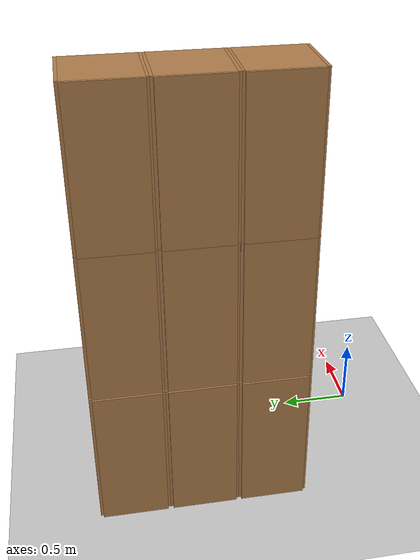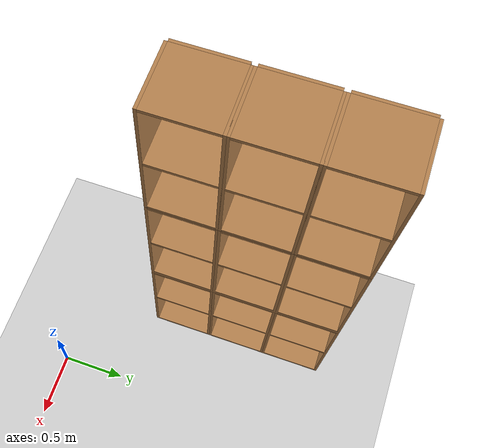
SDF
<sdf version="1.6">
 <world name="default">
  <model name="ground_plane">
   <static>1</static>
   <link name="link">
    <collision name="collision">
     <geometry><plane><normal>0 0 1</normal><size>100 100</size></plane></geometry>
     <surface>
      <contact><collide_bitmask>65535</collide_bitmask></contact>
      <friction><ode><mu>100</mu><mu2>50</mu2></ode></friction>
     </surface>
    </collision>
    <visual name="visual">
     <cast_shadows>0</cast_shadows>
     <geometry><plane><normal>0 0 1</normal><size>100 100</size></plane></geometry>
     <material>
      <script><uri>file://media/materials/scripts/gazebo.material</uri><name>Gazebo/Grey</name></script>
     </material>
    </visual>
   </link>
  </model>
  <model name="Locker18_clone_4_clone_2_clone_1_clone_clone_clone_2_clone_clone_2">
   <model name="Locker18">
    <model name="Locker3">
     <model name="cabinet">
      <static>1</static>
      <link name="cabinet_bottom_plate">
       <inertial>
        <pose>0 0 -1 0 -0 0</pose>
        <inertia><ixx>2.05</ixx><ixy>0</ixy><ixz>0</ixz><iyy>2.05</iyy><iyz>0</iyz><izz>2.05</izz></inertia>
        <mass>25</mass>
       </inertial>
       <collision name="cabinet_bottom_plate_geom">
        <pose>0 0 0.01 0 -0 0</pose>
        <geometry><box><size>0.45 0.45 0.02</size></box></geometry>
       </collision>
       <visual name="cabinet_bottom_plate_geom_visual">
        <pose>0 0 0.01 0 -0 0</pose>
        <geometry><box><size>0.45 0.45 0.02</size></box></geometry>
        <material>
         <script><uri>file://media/materials/scripts/gazebo.material</uri><name>Gazebo/Wood</name></script>
        </material>
       </visual>
       <collision name="cabinet_bottom_plate_geom_cabinet_back_plate">
        <pose>0.235 0 0.51 0 -0 0</pose>
        <geometry><box><size>0.02 0.45 1.02</size></box></geometry>
       </collision>
       <visual name="cabinet_bottom_plate_geom_cabinet_back_plate_visual">
        <pose>0.235 0 0.51 0 -0 0</pose>
        <geometry><box><size>0.02 0.45 1.02</size></box></geometry>
        <material>
         <script><uri>file://media/materials/scripts/gazebo.material</uri><name>Gazebo/Wood</name></script>
        </material>
       </visual>
       <collision name="cabinet_bottom_plate_geom_cabinet_left_plate">
        <pose>0 0.235 0.51 0 -0 0</pose>
        <geometry><box><size>0.45 0.02 1.02</size></box></geometry>
       </collision>
       <visual name="cabinet_bottom_plate_geom_cabinet_left_plate_visual">
        <pose>0 0.235 0.51 0 -0 0</pose>
        <geometry><box><size>0.45 0.02 1.02</size></box></geometry>
        <material>
         <script><uri>file://media/materials/scripts/gazebo.material</uri><name>Gazebo/Wood</name></script>
        </material>
       </visual>
       <collision name="cabinet_bottom_plate_geom_cabinet_middle_plate">
        <pose>0 0 0.51 0 -0 0</pose>
        <geometry><box><size>0.45 0.45 0.02</size></box></geometry>
       </collision>
       <visual name="cabinet_bottom_plate_geom_cabinet_middle_plate_visual">
        <pose>0 0 0.51 0 -0 0</pose>
        <geometry><box><size>0.45 0.45 0.02</size></box></geometry>
        <material>
         <script><uri>file://media/materials/scripts/gazebo.material</uri><name>Gazebo/Wood</name></script>
        </material>
       </visual>
       <collision name="cabinet_bottom_plate_geom_cabinet_right_plate">
        <pose>0 -0.235 0.51 0 -0 0</pose>
        <geometry><box><size>0.45 0.02 1.02</size></box></geometry>
       </collision>
       <visual name="cabinet_bottom_plate_geom_cabinet_right_plate_visual">
        <pose>0 -0.235 0.51 0 -0 0</pose>
        <geometry><box><size>0.45 0.02 1.02</size></box></geometry>
        <material>
         <script><uri>file://media/materials/scripts/gazebo.material</uri><name>Gazebo/Wood</name></script>
        </material>
       </visual>
       <collision name="cabinet_bottom_plate_geom_cabinet_top_plate">
        <pose>0 0 1.01 0 -0 0</pose>
        <geometry><box><size>0.45 0.45 0.02</size></box></geometry>
       </collision>
       <visual name="cabinet_bottom_plate_geom_cabinet_top_plate_visual">
        <pose>0 0 1.01 0 -0 0</pose>
        <geometry><box><size>0.45 0.45 0.02</size></box></geometry>
        <material>
         <script><uri>file://media/materials/scripts/gazebo.material</uri><name>Gazebo/Wood</name></script>
        </material>
       </visual>
      </link>
      <pose>-0.676968 1.45758 0 0 -0 0</pose>
     </model>
     <model name="cabinet_clone">
      <static>1</static>
      <link name="cabinet_bottom_plate">
       <inertial>
        <pose>0 0 -1 0 -0 0</pose>
        <inertia><ixx>2.05</ixx><ixy>0</ixy><ixz>0</ixz><iyy>2.05</iyy><iyz>0</iyz><izz>2.05</izz></inertia>
        <mass>25</mass>
       </inertial>
       <collision name="cabinet_bottom_plate_geom">
        <pose>0 0 0.01 0 -0 0</pose>
        <geometry><box><size>0.45 0.45 0.02</size></box></geometry>
       </collision>
       <visual name="cabinet_bottom_plate_geom_visual">
        <pose>0 0 0.01 0 -0 0</pose>
        <geometry><box><size>0.45 0.45 0.02</size></box></geometry>
        <material>
         <script><uri>file://media/materials/scripts/gazebo.material</uri><name>Gazebo/Wood</name></script>
        </material>
       </visual>
       <collision name="cabinet_bottom_plate_geom_cabinet_back_plate">
        <pose>0.235 0 0.51 0 -0 0</pose>
        <geometry><box><size>0.02 0.45 1.02</size></box></geometry>
       </collision>
       <visual name="cabinet_bottom_plate_geom_cabinet_back_plate_visual">
        <pose>0.235 0 0.51 0 -0 0</pose>
        <geometry><box><size>0.02 0.45 1.02</size></box></geometry>
        <material>
         <script><uri>file://media/materials/scripts/gazebo.material</uri><name>Gazebo/Wood</name></script>
        </material>
       </visual>
       <collision name="cabinet_bottom_plate_geom_cabinet_left_plate">
        <pose>0 0.235 0.51 0 -0 0</pose>
        <geometry><box><size>0.45 0.02 1.02</size></box></geometry>
       </collision>
       <visual name="cabinet_bottom_plate_geom_cabinet_left_plate_visual">
        <pose>0 0.235 0.51 0 -0 0</pose>
        <geometry><box><size>0.45 0.02 1.02</size></box></geometry>
        <material>
         <script><uri>file://media/materials/scripts/gazebo.material</uri><name>Gazebo/Wood</name></script>
        </material>
       </visual>
       <collision name="cabinet_bottom_plate_geom_cabinet_middle_plate">
        <pose>0 0 0.51 0 -0 0</pose>
        <geometry><box><size>0.45 0.45 0.02</size></box></geometry>
       </collision>
       <visual name="cabinet_bottom_plate_geom_cabinet_middle_plate_visual">
        <pose>0 0 0.51 0 -0 0</pose>
        <geometry><box><size>0.45 0.45 0.02</size></box></geometry>
        <material>
         <script><uri>file://media/materials/scripts/gazebo.material</uri><name>Gazebo/Wood</name></script>
        </material>
       </visual>
       <collision name="cabinet_bottom_plate_geom_cabinet_right_plate">
        <pose>0 -0.235 0.51 0 -0 0</pose>
        <geometry><box><size>0.45 0.02 1.02</size></box></geometry>
       </collision>
       <visual name="cabinet_bottom_plate_geom_cabinet_right_plate_visual">
        <pose>0 -0.235 0.51 0 -0 0</pose>
        <geometry><box><size>0.45 0.02 1.02</size></box></geometry>
        <material>
         <script><uri>file://media/materials/scripts/gazebo.material</uri><name>Gazebo/Wood</name></script>
        </material>
       </visual>
       <collision name="cabinet_bottom_plate_geom_cabinet_top_plate">
        <pose>0 0 1.01 0 -0 0</pose>
        <geometry><box><size>0.45 0.45 0.02</size></box></geometry>
       </collision>
       <visual name="cabinet_bottom_plate_geom_cabinet_top_plate_visual">
        <pose>0 0 1.01 0 -0 0</pose>
        <geometry><box><size>0.45 0.45 0.02</size></box></geometry>
        <material>
         <script><uri>file://media/materials/scripts/gazebo.material</uri><name>Gazebo/Wood</name></script>
        </material>
       </visual>
      </link>
      <pose>-0.676968 0.970971 0 0 -0 0</pose>
     </model>
     <model name="cabinet_clone_0">
      <static>1</static>
      <link name="cabinet_bottom_plate">
       <inertial>
        <pose>0 0 -1 0 -0 0</pose>
        <inertia><ixx>2.05</ixx><ixy>0</ixy><ixz>0</ixz><iyy>2.05</iyy><iyz>0</iyz><izz>2.05</izz></inertia>
        <mass>25</mass>
       </inertial>
       <collision name="cabinet_bottom_plate_geom">
        <pose>0 0 0.01 0 -0 0</pose>
        <geometry><box><size>0.45 0.45 0.02</size></box></geometry>
       </collision>
       <visual name="cabinet_bottom_plate_geom_visual">
        <pose>0 0 0.01 0 -0 0</pose>
        <geometry><box><size>0.45 0.45 0.02</size></box></geometry>
        <material>
         <script><uri>file://media/materials/scripts/gazebo.material</uri><name>Gazebo/Wood</name></script>
        </material>
       </visual>
       <collision name="cabinet_bottom_plate_geom_cabinet_back_plate">
        <pose>0.235 0 0.51 0 -0 0</pose>
        <geometry><box><size>0.02 0.45 1.02</size></box></geometry>
       </collision>
       <visual name="cabinet_bottom_plate_geom_cabinet_back_plate_visual">
        <pose>0.235 0 0.51 0 -0 0</pose>
        <geometry><box><size>0.02 0.45 1.02</size></box></geometry>
        <material>
         <script><uri>file://media/materials/scripts/gazebo.material</uri><name>Gazebo/Wood</name></script>
        </material>
       </visual>
       <collision name="cabinet_bottom_plate_geom_cabinet_left_plate">
        <pose>0 0.235 0.51 0 -0 0</pose>
        <geometry><box><size>0.45 0.02 1.02</size></box></geometry>
       </collision>
       <visual name="cabinet_bottom_plate_geom_cabinet_left_plate_visual">
        <pose>0 0.235 0.51 0 -0 0</pose>
        <geometry><box><size>0.45 0.02 1.02</size></box></geometry>
        <material>
         <script><uri>file://media/materials/scripts/gazebo.material</uri><name>Gazebo/Wood</name></script>
        </material>
       </visual>
       <collision name="cabinet_bottom_plate_geom_cabinet_middle_plate">
        <pose>0 0 0.51 0 -0 0</pose>
        <geometry><box><size>0.45 0.45 0.02</size></box></geometry>
       </collision>
       <visual name="cabinet_bottom_plate_geom_cabinet_middle_plate_visual">
        <pose>0 0 0.51 0 -0 0</pose>
        <geometry><box><size>0.45 0.45 0.02</size></box></geometry>
        <material>
         <script><uri>file://media/materials/scripts/gazebo.material</uri><name>Gazebo/Wood</name></script>
        </material>
       </visual>
       <collision name="cabinet_bottom_plate_geom_cabinet_right_plate">
        <pose>0 -0.235 0.51 0 -0 0</pose>
        <geometry><box><size>0.45 0.02 1.02</size></box></geometry>
       </collision>
       <visual name="cabinet_bottom_plate_geom_cabinet_right_plate_visual">
        <pose>0 -0.235 0.51 0 -0 0</pose>
        <geometry><box><size>0.45 0.02 1.02</size></box></geometry>
        <material>
         <script><uri>file://media/materials/scripts/gazebo.material</uri><name>Gazebo/Wood</name></script>
        </material>
       </visual>
       <collision name="cabinet_bottom_plate_geom_cabinet_top_plate">
        <pose>0 0 1.01 0 -0 0</pose>
        <geometry><box><size>0.45 0.45 0.02</size></box></geometry>
       </collision>
       <visual name="cabinet_bottom_plate_geom_cabinet_top_plate_visual">
        <pose>0 0 1.01 0 -0 0</pose>
        <geometry><box><size>0.45 0.45 0.02</size></box></geometry>
        <material>
         <script><uri>file://media/materials/scripts/gazebo.material</uri><name>Gazebo/Wood</name></script>
        </material>
       </visual>
      </link>
      <pose>-0.676968 0.48391 0 0 -0 0</pose>
     </model>
     <static>0</static>
     <pose>0 3e-06 -1.02763 0 -0 0</pose>
    </model>
    <model name="Locker3_clone">
     <model name="cabinet">
      <static>1</static>
      <link name="cabinet_bottom_plate">
       <inertial>
        <pose>0 0 -1 0 -0 0</pose>
        <inertia><ixx>2.05</ixx><ixy>0</ixy><ixz>0</ixz><iyy>2.05</iyy><iyz>0</iyz><izz>2.05</izz></inertia>
        <mass>25</mass>
       </inertial>
       <collision name="cabinet_bottom_plate_geom">
        <pose>0 0 0.01 0 -0 0</pose>
        <geometry><box><size>0.45 0.45 0.02</size></box></geometry>
       </collision>
       <visual name="cabinet_bottom_plate_geom_visual">
        <pose>0 0 0.01 0 -0 0</pose>
        <geometry><box><size>0.45 0.45 0.02</size></box></geometry>
        <material>
         <script><uri>file://media/materials/scripts/gazebo.material</uri><name>Gazebo/Wood</name></script>
        </material>
       </visual>
       <collision name="cabinet_bottom_plate_geom_cabinet_back_plate">
        <pose>0.235 0 0.51 0 -0 0</pose>
        <geometry><box><size>0.02 0.45 1.02</size></box></geometry>
       </collision>
       <visual name="cabinet_bottom_plate_geom_cabinet_back_plate_visual">
        <pose>0.235 0 0.51 0 -0 0</pose>
        <geometry><box><size>0.02 0.45 1.02</size></box></geometry>
        <material>
         <script><uri>file://media/materials/scripts/gazebo.material</uri><name>Gazebo/Wood</name></script>
        </material>
       </visual>
       <collision name="cabinet_bottom_plate_geom_cabinet_left_plate">
        <pose>0 0.235 0.51 0 -0 0</pose>
        <geometry><box><size>0.45 0.02 1.02</size></box></geometry>
       </collision>
       <visual name="cabinet_bottom_plate_geom_cabinet_left_plate_visual">
        <pose>0 0.235 0.51 0 -0 0</pose>
        <geometry><box><size>0.45 0.02 1.02</size></box></geometry>
        <material>
         <script><uri>file://media/materials/scripts/gazebo.material</uri><name>Gazebo/Wood</name></script>
        </material>
       </visual>
       <collision name="cabinet_bottom_plate_geom_cabinet_middle_plate">
        <pose>0 0 0.51 0 -0 0</pose>
        <geometry><box><size>0.45 0.45 0.02</size></box></geometry>
       </collision>
       <visual name="cabinet_bottom_plate_geom_cabinet_middle_plate_visual">
        <pose>0 0 0.51 0 -0 0</pose>
        <geometry><box><size>0.45 0.45 0.02</size></box></geometry>
        <material>
         <script><uri>file://media/materials/scripts/gazebo.material</uri><name>Gazebo/Wood</name></script>
        </material>
       </visual>
       <collision name="cabinet_bottom_plate_geom_cabinet_right_plate">
        <pose>0 -0.235 0.51 0 -0 0</pose>
        <geometry><box><size>0.45 0.02 1.02</size></box></geometry>
       </collision>
       <visual name="cabinet_bottom_plate_geom_cabinet_right_plate_visual">
        <pose>0 -0.235 0.51 0 -0 0</pose>
        <geometry><box><size>0.45 0.02 1.02</size></box></geometry>
        <material>
         <script><uri>file://media/materials/scripts/gazebo.material</uri><name>Gazebo/Wood</name></script>
        </material>
       </visual>
       <collision name="cabinet_bottom_plate_geom_cabinet_top_plate">
        <pose>0 0 1.01 0 -0 0</pose>
        <geometry><box><size>0.45 0.45 0.02</size></box></geometry>
       </collision>
       <visual name="cabinet_bottom_plate_geom_cabinet_top_plate_visual">
        <pose>0 0 1.01 0 -0 0</pose>
        <geometry><box><size>0.45 0.45 0.02</size></box></geometry>
        <material>
         <script><uri>file://media/materials/scripts/gazebo.material</uri><name>Gazebo/Wood</name></script>
        </material>
       </visual>
      </link>
      <pose>-0.676968 1.45758 0 0 -0 0</pose>
     </model>
     <model name="cabinet_clone">
      <static>1</static>
      <link name="cabinet_bottom_plate">
       <inertial>
        <pose>0 0 -1 0 -0 0</pose>
        <inertia><ixx>2.05</ixx><ixy>0</ixy><ixz>0</ixz><iyy>2.05</iyy><iyz>0</iyz><izz>2.05</izz></inertia>
        <mass>25</mass>
       </inertial>
       <collision name="cabinet_bottom_plate_geom">
        <pose>0 0 0.01 0 -0 0</pose>
        <geometry><box><size>0.45 0.45 0.02</size></box></geometry>
       </collision>
       <visual name="cabinet_bottom_plate_geom_visual">
        <pose>0 0 0.01 0 -0 0</pose>
        <geometry><box><size>0.45 0.45 0.02</size></box></geometry>
        <material>
         <script><uri>file://media/materials/scripts/gazebo.material</uri><name>Gazebo/Wood</name></script>
        </material>
       </visual>
       <collision name="cabinet_bottom_plate_geom_cabinet_back_plate">
        <pose>0.235 0 0.51 0 -0 0</pose>
        <geometry><box><size>0.02 0.45 1.02</size></box></geometry>
       </collision>
       <visual name="cabinet_bottom_plate_geom_cabinet_back_plate_visual">
        <pose>0.235 0 0.51 0 -0 0</pose>
        <geometry><box><size>0.02 0.45 1.02</size></box></geometry>
        <material>
         <script><uri>file://media/materials/scripts/gazebo.material</uri><name>Gazebo/Wood</name></script>
        </material>
       </visual>
       <collision name="cabinet_bottom_plate_geom_cabinet_left_plate">
        <pose>0 0.235 0.51 0 -0 0</pose>
        <geometry><box><size>0.45 0.02 1.02</size></box></geometry>
       </collision>
       <visual name="cabinet_bottom_plate_geom_cabinet_left_plate_visual">
        <pose>0 0.235 0.51 0 -0 0</pose>
        <geometry><box><size>0.45 0.02 1.02</size></box></geometry>
        <material>
         <script><uri>file://media/materials/scripts/gazebo.material</uri><name>Gazebo/Wood</name></script>
        </material>
       </visual>
       <collision name="cabinet_bottom_plate_geom_cabinet_middle_plate">
        <pose>0 0 0.51 0 -0 0</pose>
        <geometry><box><size>0.45 0.45 0.02</size></box></geometry>
       </collision>
       <visual name="cabinet_bottom_plate_geom_cabinet_middle_plate_visual">
        <pose>0 0 0.51 0 -0 0</pose>
        <geometry><box><size>0.45 0.45 0.02</size></box></geometry>
        <material>
         <script><uri>file://media/materials/scripts/gazebo.material</uri><name>Gazebo/Wood</name></script>
        </material>
       </visual>
       <collision name="cabinet_bottom_plate_geom_cabinet_right_plate">
        <pose>0 -0.235 0.51 0 -0 0</pose>
        <geometry><box><size>0.45 0.02 1.02</size></box></geometry>
       </collision>
       <visual name="cabinet_bottom_plate_geom_cabinet_right_plate_visual">
        <pose>0 -0.235 0.51 0 -0 0</pose>
        <geometry><box><size>0.45 0.02 1.02</size></box></geometry>
        <material>
         <script><uri>file://media/materials/scripts/gazebo.material</uri><name>Gazebo/Wood</name></script>
        </material>
       </visual>
       <collision name="cabinet_bottom_plate_geom_cabinet_top_plate">
        <pose>0 0 1.01 0 -0 0</pose>
        <geometry><box><size>0.45 0.45 0.02</size></box></geometry>
       </collision>
       <visual name="cabinet_bottom_plate_geom_cabinet_top_plate_visual">
        <pose>0 0 1.01 0 -0 0</pose>
        <geometry><box><size>0.45 0.45 0.02</size></box></geometry>
        <material>
         <script><uri>file://media/materials/scripts/gazebo.material</uri><name>Gazebo/Wood</name></script>
        </material>
       </visual>
      </link>
      <pose>-0.676968 0.970971 0 0 -0 0</pose>
     </model>
     <model name="cabinet_clone_0">
      <static>1</static>
      <link name="cabinet_bottom_plate">
       <inertial>
        <pose>0 0 -1 0 -0 0</pose>
        <inertia><ixx>2.05</ixx><ixy>0</ixy><ixz>0</ixz><iyy>2.05</iyy><iyz>0</iyz><izz>2.05</izz></inertia>
        <mass>25</mass>
       </inertial>
       <collision name="cabinet_bottom_plate_geom">
        <pose>0 0 0.01 0 -0 0</pose>
        <geometry><box><size>0.45 0.45 0.02</size></box></geometry>
       </collision>
       <visual name="cabinet_bottom_plate_geom_visual">
        <pose>0 0 0.01 0 -0 0</pose>
        <geometry><box><size>0.45 0.45 0.02</size></box></geometry>
        <material>
         <script><uri>file://media/materials/scripts/gazebo.material</uri><name>Gazebo/Wood</name></script>
        </material>
       </visual>
       <collision name="cabinet_bottom_plate_geom_cabinet_back_plate">
        <pose>0.235 0 0.51 0 -0 0</pose>
        <geometry><box><size>0.02 0.45 1.02</size></box></geometry>
       </collision>
       <visual name="cabinet_bottom_plate_geom_cabinet_back_plate_visual">
        <pose>0.235 0 0.51 0 -0 0</pose>
        <geometry><box><size>0.02 0.45 1.02</size></box></geometry>
        <material>
         <script><uri>file://media/materials/scripts/gazebo.material</uri><name>Gazebo/Wood</name></script>
        </material>
       </visual>
       <collision name="cabinet_bottom_plate_geom_cabinet_left_plate">
        <pose>0 0.235 0.51 0 -0 0</pose>
        <geometry><box><size>0.45 0.02 1.02</size></box></geometry>
       </collision>
       <visual name="cabinet_bottom_plate_geom_cabinet_left_plate_visual">
        <pose>0 0.235 0.51 0 -0 0</pose>
        <geometry><box><size>0.45 0.02 1.02</size></box></geometry>
        <material>
         <script><uri>file://media/materials/scripts/gazebo.material</uri><name>Gazebo/Wood</name></script>
        </material>
       </visual>
       <collision name="cabinet_bottom_plate_geom_cabinet_middle_plate">
        <pose>0 0 0.51 0 -0 0</pose>
        <geometry><box><size>0.45 0.45 0.02</size></box></geometry>
       </collision>
       <visual name="cabinet_bottom_plate_geom_cabinet_middle_plate_visual">
        <pose>0 0 0.51 0 -0 0</pose>
        <geometry><box><size>0.45 0.45 0.02</size></box></geometry>
        <material>
         <script><uri>file://media/materials/scripts/gazebo.material</uri><name>Gazebo/Wood</name></script>
        </material>
       </visual>
       <collision name="cabinet_bottom_plate_geom_cabinet_right_plate">
        <pose>0 -0.235 0.51 0 -0 0</pose>
        <geometry><box><size>0.45 0.02 1.02</size></box></geometry>
       </collision>
       <visual name="cabinet_bottom_plate_geom_cabinet_right_plate_visual">
        <pose>0 -0.235 0.51 0 -0 0</pose>
        <geometry><box><size>0.45 0.02 1.02</size></box></geometry>
        <material>
         <script><uri>file://media/materials/scripts/gazebo.material</uri><name>Gazebo/Wood</name></script>
        </material>
       </visual>
       <collision name="cabinet_bottom_plate_geom_cabinet_top_plate">
        <pose>0 0 1.01 0 -0 0</pose>
        <geometry><box><size>0.45 0.45 0.02</size></box></geometry>
       </collision>
       <visual name="cabinet_bottom_plate_geom_cabinet_top_plate_visual">
        <pose>0 0 1.01 0 -0 0</pose>
        <geometry><box><size>0.45 0.45 0.02</size></box></geometry>
        <material>
         <script><uri>file://media/materials/scripts/gazebo.material</uri><name>Gazebo/Wood</name></script>
        </material>
       </visual>
      </link>
      <pose>-0.676968 0.48391 0 0 -0 0</pose>
     </model>
     <static>0</static>
     <pose>0 3e-06 0.003717 0 -0 0</pose>
    </model>
    <model name="Locker3_clone_clone">
     <model name="cabinet">
      <static>1</static>
      <link name="cabinet_bottom_plate">
       <inertial>
        <pose>0 0 -1 0 -0 0</pose>
        <inertia><ixx>2.05</ixx><ixy>0</ixy><ixz>0</ixz><iyy>2.05</iyy><iyz>0</iyz><izz>2.05</izz></inertia>
        <mass>25</mass>
       </inertial>
       <collision name="cabinet_bottom_plate_geom">
        <pose>0 0 0.01 0 -0 0</pose>
        <geometry><box><size>0.45 0.45 0.02</size></box></geometry>
       </collision>
       <visual name="cabinet_bottom_plate_geom_visual">
        <pose>0 0 0.01 0 -0 0</pose>
        <geometry><box><size>0.45 0.45 0.02</size></box></geometry>
        <material>
         <script><uri>file://media/materials/scripts/gazebo.material</uri><name>Gazebo/Wood</name></script>
        </material>
       </visual>
       <collision name="cabinet_bottom_plate_geom_cabinet_back_plate">
        <pose>0.235 0 0.51 0 -0 0</pose>
        <geometry><box><size>0.02 0.45 1.02</size></box></geometry>
       </collision>
       <visual name="cabinet_bottom_plate_geom_cabinet_back_plate_visual">
        <pose>0.235 0 0.51 0 -0 0</pose>
        <geometry><box><size>0.02 0.45 1.02</size></box></geometry>
        <material>
         <script><uri>file://media/materials/scripts/gazebo.material</uri><name>Gazebo/Wood</name></script>
        </material>
       </visual>
       <collision name="cabinet_bottom_plate_geom_cabinet_left_plate">
        <pose>0 0.235 0.51 0 -0 0</pose>
        <geometry><box><size>0.45 0.02 1.02</size></box></geometry>
       </collision>
       <visual name="cabinet_bottom_plate_geom_cabinet_left_plate_visual">
        <pose>0 0.235 0.51 0 -0 0</pose>
        <geometry><box><size>0.45 0.02 1.02</size></box></geometry>
        <material>
         <script><uri>file://media/materials/scripts/gazebo.material</uri><name>Gazebo/Wood</name></script>
        </material>
       </visual>
       <collision name="cabinet_bottom_plate_geom_cabinet_middle_plate">
        <pose>0 0 0.51 0 -0 0</pose>
        <geometry><box><size>0.45 0.45 0.02</size></box></geometry>
       </collision>
       <visual name="cabinet_bottom_plate_geom_cabinet_middle_plate_visual">
        <pose>0 0 0.51 0 -0 0</pose>
        <geometry><box><size>0.45 0.45 0.02</size></box></geometry>
        <material>
         <script><uri>file://media/materials/scripts/gazebo.material</uri><name>Gazebo/Wood</name></script>
        </material>
       </visual>
       <collision name="cabinet_bottom_plate_geom_cabinet_right_plate">
        <pose>0 -0.235 0.51 0 -0 0</pose>
        <geometry><box><size>0.45 0.02 1.02</size></box></geometry>
       </collision>
       <visual name="cabinet_bottom_plate_geom_cabinet_right_plate_visual">
        <pose>0 -0.235 0.51 0 -0 0</pose>
        <geometry><box><size>0.45 0.02 1.02</size></box></geometry>
        <material>
         <script><uri>file://media/materials/scripts/gazebo.material</uri><name>Gazebo/Wood</name></script>
        </material>
       </visual>
       <collision name="cabinet_bottom_plate_geom_cabinet_top_plate">
        <pose>0 0 1.01 0 -0 0</pose>
        <geometry><box><size>0.45 0.45 0.02</size></box></geometry>
       </collision>
       <visual name="cabinet_bottom_plate_geom_cabinet_top_plate_visual">
        <pose>0 0 1.01 0 -0 0</pose>
        <geometry><box><size>0.45 0.45 0.02</size></box></geometry>
        <material>
         <script><uri>file://media/materials/scripts/gazebo.material</uri><name>Gazebo/Wood</name></script>
        </material>
       </visual>
      </link>
      <pose>-0.676968 1.45758 0 0 -0 0</pose>
     </model>
     <model name="cabinet_clone">
      <static>1</static>
      <link name="cabinet_bottom_plate">
       <inertial>
        <pose>0 0 -1 0 -0 0</pose>
        <inertia><ixx>2.05</ixx><ixy>0</ixy><ixz>0</ixz><iyy>2.05</iyy><iyz>0</iyz><izz>2.05</izz></inertia>
        <mass>25</mass>
       </inertial>
       <collision name="cabinet_bottom_plate_geom">
        <pose>0 0 0.01 0 -0 0</pose>
        <geometry><box><size>0.45 0.45 0.02</size></box></geometry>
       </collision>
       <visual name="cabinet_bottom_plate_geom_visual">
        <pose>0 0 0.01 0 -0 0</pose>
        <geometry><box><size>0.45 0.45 0.02</size></box></geometry>
        <material>
         <script><uri>file://media/materials/scripts/gazebo.material</uri><name>Gazebo/Wood</name></script>
        </material>
       </visual>
       <collision name="cabinet_bottom_plate_geom_cabinet_back_plate">
        <pose>0.235 0 0.51 0 -0 0</pose>
        <geometry><box><size>0.02 0.45 1.02</size></box></geometry>
       </collision>
       <visual name="cabinet_bottom_plate_geom_cabinet_back_plate_visual">
        <pose>0.235 0 0.51 0 -0 0</pose>
        <geometry><box><size>0.02 0.45 1.02</size></box></geometry>
        <material>
         <script><uri>file://media/materials/scripts/gazebo.material</uri><name>Gazebo/Wood</name></script>
        </material>
       </visual>
       <collision name="cabinet_bottom_plate_geom_cabinet_left_plate">
        <pose>0 0.235 0.51 0 -0 0</pose>
        <geometry><box><size>0.45 0.02 1.02</size></box></geometry>
       </collision>
       <visual name="cabinet_bottom_plate_geom_cabinet_left_plate_visual">
        <pose>0 0.235 0.51 0 -0 0</pose>
        <geometry><box><size>0.45 0.02 1.02</size></box></geometry>
        <material>
         <script><uri>file://media/materials/scripts/gazebo.material</uri><name>Gazebo/Wood</name></script>
        </material>
       </visual>
       <collision name="cabinet_bottom_plate_geom_cabinet_middle_plate">
        <pose>0 0 0.51 0 -0 0</pose>
        <geometry><box><size>0.45 0.45 0.02</size></box></geometry>
       </collision>
       <visual name="cabinet_bottom_plate_geom_cabinet_middle_plate_visual">
        <pose>0 0 0.51 0 -0 0</pose>
        <geometry><box><size>0.45 0.45 0.02</size></box></geometry>
        <material>
         <script><uri>file://media/materials/scripts/gazebo.material</uri><name>Gazebo/Wood</name></script>
        </material>
       </visual>
       <collision name="cabinet_bottom_plate_geom_cabinet_right_plate">
        <pose>0 -0.235 0.51 0 -0 0</pose>
        <geometry><box><size>0.45 0.02 1.02</size></box></geometry>
       </collision>
       <visual name="cabinet_bottom_plate_geom_cabinet_right_plate_visual">
        <pose>0 -0.235 0.51 0 -0 0</pose>
        <geometry><box><size>0.45 0.02 1.02</size></box></geometry>
        <material>
         <script><uri>file://media/materials/scripts/gazebo.material</uri><name>Gazebo/Wood</name></script>
        </material>
       </visual>
       <collision name="cabinet_bottom_plate_geom_cabinet_top_plate">
        <pose>0 0 1.01 0 -0 0</pose>
        <geometry><box><size>0.45 0.45 0.02</size></box></geometry>
       </collision>
       <visual name="cabinet_bottom_plate_geom_cabinet_top_plate_visual">
        <pose>0 0 1.01 0 -0 0</pose>
        <geometry><box><size>0.45 0.45 0.02</size></box></geometry>
        <material>
         <script><uri>file://media/materials/scripts/gazebo.material</uri><name>Gazebo/Wood</name></script>
        </material>
       </visual>
      </link>
      <pose>-0.676968 0.970971 0 0 -0 0</pose>
     </model>
     <model name="cabinet_clone_0">
      <static>1</static>
      <link name="cabinet_bottom_plate">
       <inertial>
        <pose>0 0 -1 0 -0 0</pose>
        <inertia><ixx>2.05</ixx><ixy>0</ixy><ixz>0</ixz><iyy>2.05</iyy><iyz>0</iyz><izz>2.05</izz></inertia>
        <mass>25</mass>
       </inertial>
       <collision name="cabinet_bottom_plate_geom">
        <pose>0 0 0.01 0 -0 0</pose>
        <geometry><box><size>0.45 0.45 0.02</size></box></geometry>
       </collision>
       <visual name="cabinet_bottom_plate_geom_visual">
        <pose>0 0 0.01 0 -0 0</pose>
        <geometry><box><size>0.45 0.45 0.02</size></box></geometry>
        <material>
         <script><uri>file://media/materials/scripts/gazebo.material</uri><name>Gazebo/Wood</name></script>
        </material>
       </visual>
       <collision name="cabinet_bottom_plate_geom_cabinet_back_plate">
        <pose>0.235 0 0.51 0 -0 0</pose>
        <geometry><box><size>0.02 0.45 1.02</size></box></geometry>
       </collision>
       <visual name="cabinet_bottom_plate_geom_cabinet_back_plate_visual">
        <pose>0.235 0 0.51 0 -0 0</pose>
        <geometry><box><size>0.02 0.45 1.02</size></box></geometry>
        <material>
         <script><uri>file://media/materials/scripts/gazebo.material</uri><name>Gazebo/Wood</name></script>
        </material>
       </visual>
       <collision name="cabinet_bottom_plate_geom_cabinet_left_plate">
        <pose>0 0.235 0.51 0 -0 0</pose>
        <geometry><box><size>0.45 0.02 1.02</size></box></geometry>
       </collision>
       <visual name="cabinet_bottom_plate_geom_cabinet_left_plate_visual">
        <pose>0 0.235 0.51 0 -0 0</pose>
        <geometry><box><size>0.45 0.02 1.02</size></box></geometry>
        <material>
         <script><uri>file://media/materials/scripts/gazebo.material</uri><name>Gazebo/Wood</name></script>
        </material>
       </visual>
       <collision name="cabinet_bottom_plate_geom_cabinet_middle_plate">
        <pose>0 0 0.51 0 -0 0</pose>
        <geometry><box><size>0.45 0.45 0.02</size></box></geometry>
       </collision>
       <visual name="cabinet_bottom_plate_geom_cabinet_middle_plate_visual">
        <pose>0 0 0.51 0 -0 0</pose>
        <geometry><box><size>0.45 0.45 0.02</size></box></geometry>
        <material>
         <script><uri>file://media/materials/scripts/gazebo.material</uri><name>Gazebo/Wood</name></script>
        </material>
       </visual>
       <collision name="cabinet_bottom_plate_geom_cabinet_right_plate">
        <pose>0 -0.235 0.51 0 -0 0</pose>
        <geometry><box><size>0.45 0.02 1.02</size></box></geometry>
       </collision>
       <visual name="cabinet_bottom_plate_geom_cabinet_right_plate_visual">
        <pose>0 -0.235 0.51 0 -0 0</pose>
        <geometry><box><size>0.45 0.02 1.02</size></box></geometry>
        <material>
         <script><uri>file://media/materials/scripts/gazebo.material</uri><name>Gazebo/Wood</name></script>
        </material>
       </visual>
       <collision name="cabinet_bottom_plate_geom_cabinet_top_plate">
        <pose>0 0 1.01 0 -0 0</pose>
        <geometry><box><size>0.45 0.45 0.02</size></box></geometry>
       </collision>
       <visual name="cabinet_bottom_plate_geom_cabinet_top_plate_visual">
        <pose>0 0 1.01 0 -0 0</pose>
        <geometry><box><size>0.45 0.45 0.02</size></box></geometry>
        <material>
         <script><uri>file://media/materials/scripts/gazebo.material</uri><name>Gazebo/Wood</name></script>
        </material>
       </visual>
      </link>
      <pose>-0.676968 0.48391 0 0 -0 0</pose>
     </model>
     <static>0</static>
     <pose>0 3e-06 1.02391 0 -0 0</pose>
    </model>
    <static>0</static>
    <pose>-0 4e-06 4e-06 0 -0 0</pose>
   </model>
   <static>0</static>
   <pose>-1.4992 2.31963 1.08672 0 -0 3.14119</pose>
  </model>
 </world>
</sdf>
